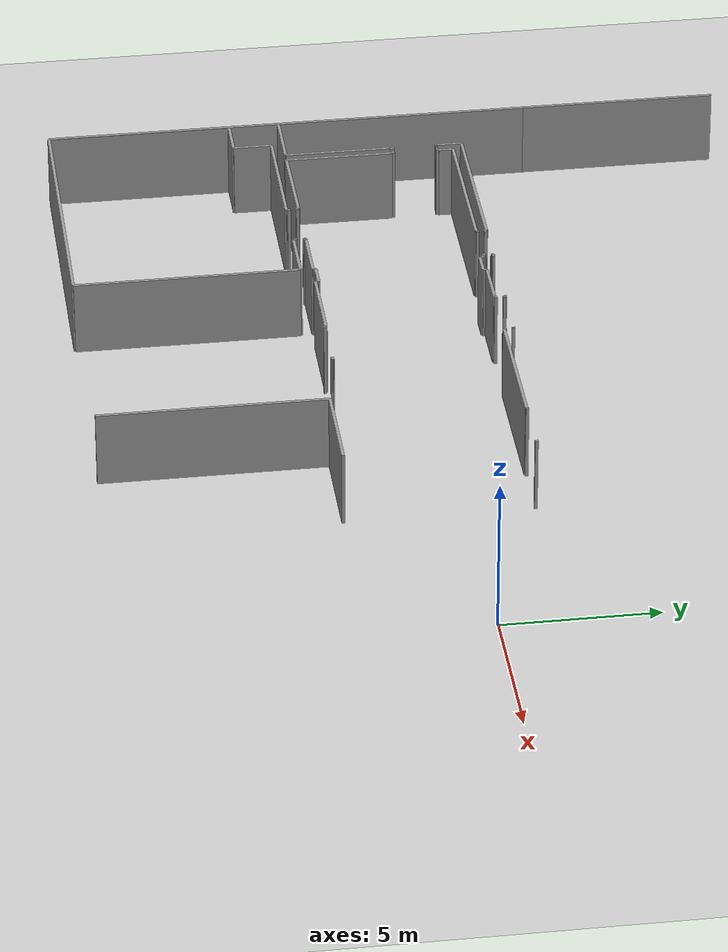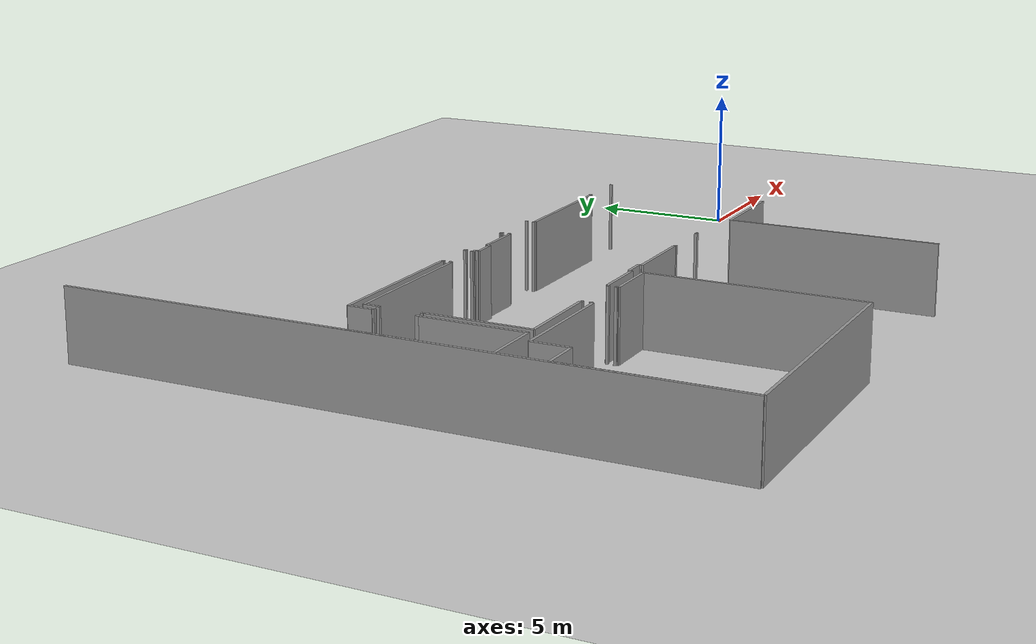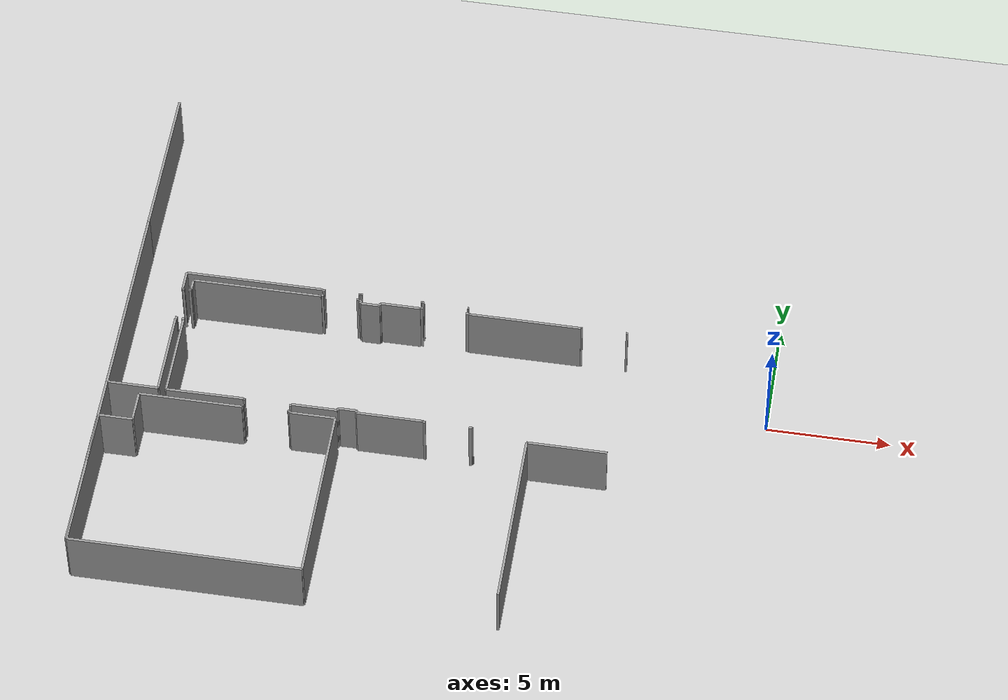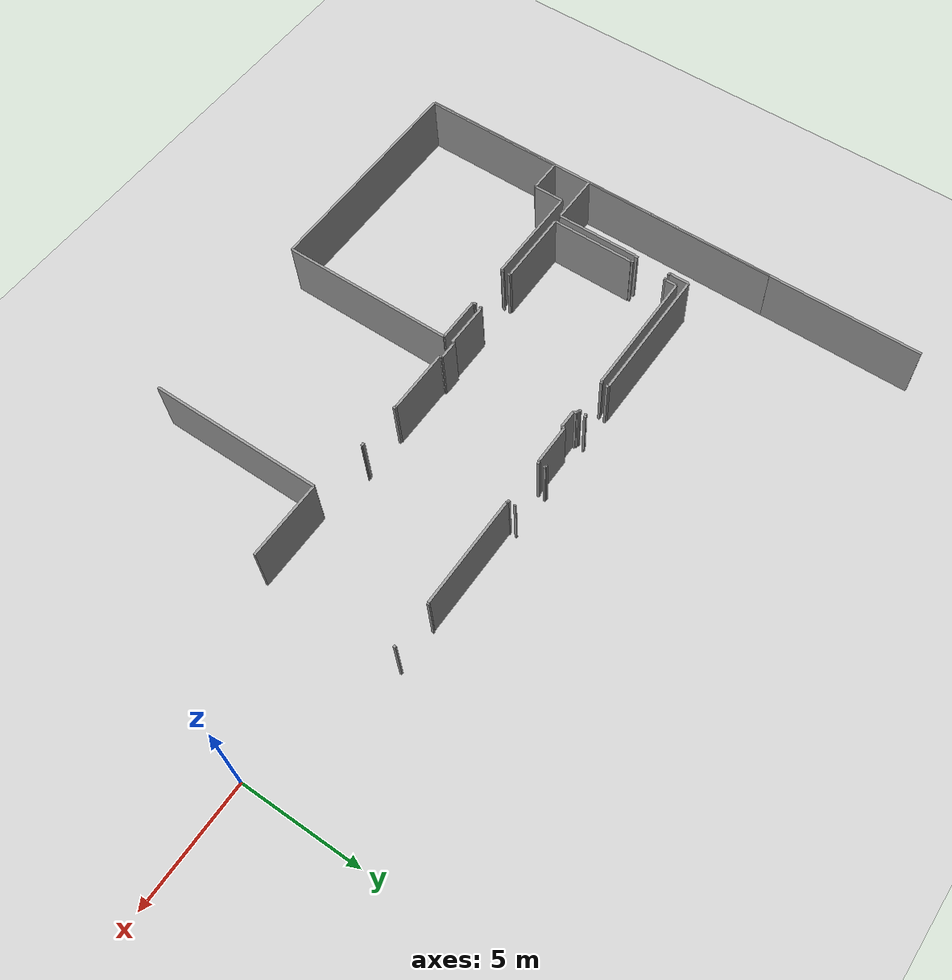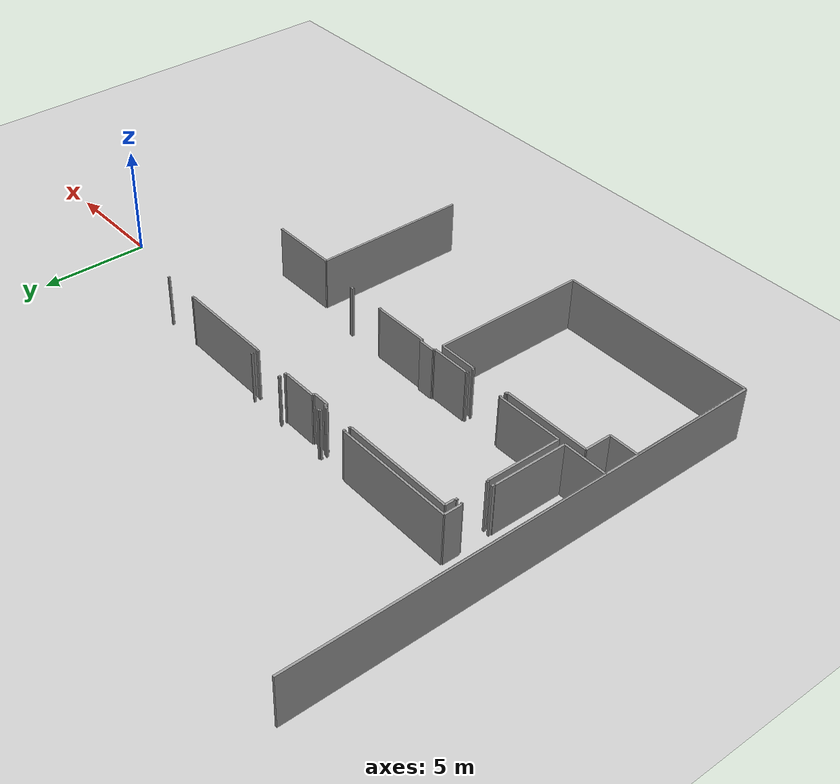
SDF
<sdf version="1.6">
 <world name="default">
  <model name="ground_plane">
   <static>1</static>
   <link name="link">
    <collision name="collision">
     <geometry><plane><normal>0 0 1</normal><size>100 100</size></plane></geometry>
     <surface><friction><ode><mu>100</mu><mu2>50</mu2></ode></friction></surface>
    </collision>
    <visual name="visual">
     <cast_shadows>0</cast_shadows>
     <geometry><plane><normal>0 0 1</normal><size>100 100</size></plane></geometry>
     <material>
      <script><uri>file://media/materials/scripts/gazebo.material</uri><name>Gazebo/Grey</name></script>
     </material>
    </visual>
   </link>
  </model>
  <model name="0510030938_A_40_1_102">
   <static>1</static>
   <link name="Wall_0">
    <collision name="Wall_0_Collision">
     <geometry><box><size>8.27512581973 0.1 2.5</size></box></geometry>
     <pose>4.13756290987 0 1.25 0 0 0</pose>
    </collision>
    <visual name="Wall_0_Visual">
     <pose>4.13756290987 0 1.25 0 0 0</pose>
     <geometry><box><size>8.27512581973 0.1 2.5</size></box></geometry>
     <material>
      <script><uri>file://media/materials/scripts/gazebo.material</uri><name>Gazebo/Grey</name></script>
      <ambient>1 1 1 1</ambient>
     </material>
    </visual>
    <pose>0.00724416653958 -14.7061664379 0 0 0 1.57079632679</pose>
   </link>
   <link name="Wall_6">
    <collision name="Wall_6_Collision">
     <geometry><box><size>0.0915052615525 0.1 2.5</size></box></geometry>
     <pose>0.0457526307763 0 1.25 0 0 0</pose>
    </collision>
    <visual name="Wall_6_Visual">
     <pose>0.0457526307763 0 1.25 0 0 0</pose>
     <geometry><box><size>0.0915052615525 0.1 2.5</size></box></geometry>
     <material>
      <script><uri>file://media/materials/scripts/gazebo.material</uri><name>Gazebo/Grey</name></script>
      <ambient>1 1 1 1</ambient>
     </material>
    </visual>
    <pose>9.31243963195 -8.81615067866 0 0 0 3.14159265359</pose>
   </link>
   <link name="Wall_7">
    <collision name="Wall_7_Collision">
     <geometry><box><size>0.031010116415 0.1 2.5</size></box></geometry>
     <pose>0.0155050582075 0 1.25 0 0 0</pose>
    </collision>
    <visual name="Wall_7_Visual">
     <pose>0.0155050582075 0 1.25 0 0 0</pose>
     <geometry><box><size>0.031010116415 0.1 2.5</size></box></geometry>
     <material>
      <script><uri>file://media/materials/scripts/gazebo.material</uri><name>Gazebo/Grey</name></script>
      <ambient>1 1 1 1</ambient>
     </material>
    </visual>
    <pose>9.22093437039 -8.81615067866 0 0 0 -1.57079632679</pose>
   </link>
   <link name="Wall_8">
    <collision name="Wall_8_Collision">
     <geometry><box><size>0.070281124498 0.1 2.5</size></box></geometry>
     <pose>0.035140562249 0 1.25 0 0 0</pose>
    </collision>
    <visual name="Wall_8_Visual">
     <pose>0.035140562249 0 1.25 0 0 0</pose>
     <geometry><box><size>0.070281124498 0.1 2.5</size></box></geometry>
     <material>
      <script><uri>file://media/materials/scripts/gazebo.material</uri><name>Gazebo/Grey</name></script>
      <ambient>1 1 1 1</ambient>
     </material>
    </visual>
    <pose>9.22093437039 -8.84716079508 0 0 0 3.14159265359</pose>
   </link>
   <link name="Wall_9">
    <collision name="Wall_9_Collision">
     <geometry><box><size>0.108408316812 0.1 2.5</size></box></geometry>
     <pose>0.0542041584058 0 1.25 0 0 0</pose>
    </collision>
    <visual name="Wall_9_Visual">
     <pose>0.0542041584058 0 1.25 0 0 0</pose>
     <geometry><box><size>0.108408316812 0.1 2.5</size></box></geometry>
     <material>
      <script><uri>file://media/materials/scripts/gazebo.material</uri><name>Gazebo/Grey</name></script>
      <ambient>1 1 1 1</ambient>
     </material>
    </visual>
    <pose>7.79027502415 -8.84716079508 0 0 0 3.14159265359</pose>
   </link>
   <link name="Wall_10">
    <collision name="Wall_10_Collision">
     <geometry><box><size>0.0318997509023 0.1 2.5</size></box></geometry>
     <pose>0.0159498754512 0 1.25 0 0 0</pose>
    </collision>
    <visual name="Wall_10_Visual">
     <pose>0.0159498754512 0 1.25 0 0 0</pose>
     <geometry><box><size>0.0318997509023 0.1 2.5</size></box></geometry>
     <material>
      <script><uri>file://media/materials/scripts/gazebo.material</uri><name>Gazebo/Grey</name></script>
      <ambient>1 1 1 1</ambient>
     </material>
    </visual>
    <pose>7.68186670734 -8.84716079508 0 0 0 1.57079632679</pose>
   </link>
   <link name="Wall_11">
    <collision name="Wall_11_Collision">
     <geometry><box><size>5.61016216766 0.1 2.5</size></box></geometry>
     <pose>2.80508108383 0 1.25 0 0 0</pose>
    </collision>
    <visual name="Wall_11_Visual">
     <pose>2.80508108383 0 1.25 0 0 0</pose>
     <geometry><box><size>5.61016216766 0.1 2.5</size></box></geometry>
     <material>
      <script><uri>file://media/materials/scripts/gazebo.material</uri><name>Gazebo/Grey</name></script>
      <ambient>1 1 1 1</ambient>
     </material>
    </visual>
    <pose>7.68186670734 -8.81526104418 0 0 0 3.14159265359</pose>
   </link>
   <link name="Wall_12">
    <collision name="Wall_12_Collision">
     <geometry><box><size>0.824691169742 0.1 2.5</size></box></geometry>
     <pose>0.412345584871 0 1.25 0 0 0</pose>
    </collision>
    <visual name="Wall_12_Visual">
     <pose>0.412345584871 0 1.25 0 0 0</pose>
     <geometry><box><size>0.824691169742 0.1 2.5</size></box></geometry>
     <material>
      <script><uri>file://media/materials/scripts/gazebo.material</uri><name>Gazebo/Grey</name></script>
      <ambient>1 1 1 1</ambient>
     </material>
    </visual>
    <pose>2.07170453968 -8.81526104418 0 0 0 -1.57079632679</pose>
   </link>
   <link name="Wall_13">
    <collision name="Wall_13_Collision">
     <geometry><box><size>0.0330435666718 0.1 2.5</size></box></geometry>
     <pose>0.0165217833359 0 1.25 0 0 0</pose>
    </collision>
    <visual name="Wall_13_Visual">
     <pose>0.0165217833359 0 1.25 0 0 0</pose>
     <geometry><box><size>0.0330435666718 0.1 2.5</size></box></geometry>
     <material>
      <script><uri>file://media/materials/scripts/gazebo.material</uri><name>Gazebo/Grey</name></script>
      <ambient>1 1 1 1</ambient>
     </material>
    </visual>
    <pose>2.07170453968 -9.63995221392 0 0 0 0.0</pose>
   </link>
   <link name="Wall_14">
    <collision name="Wall_14_Collision">
     <geometry><box><size>0.0660871333435 0.1 2.5</size></box></geometry>
     <pose>0.0330435666718 0 1.25 0 0 0</pose>
    </collision>
    <visual name="Wall_14_Visual">
     <pose>0.0330435666718 0 1.25 0 0 0</pose>
     <geometry><box><size>0.0660871333435 0.1 2.5</size></box></geometry>
     <material>
      <script><uri>file://media/materials/scripts/gazebo.material</uri><name>Gazebo/Grey</name></script>
      <ambient>1 1 1 1</ambient>
     </material>
    </visual>
    <pose>2.10474810635 -9.63995221392 0 0 0 -1.57079632679</pose>
   </link>
   <link name="Wall_15">
    <collision name="Wall_15_Collision">
     <geometry><box><size>0.133953535662 0.1 2.5</size></box></geometry>
     <pose>0.0669767678308 0 1.25 0 0 0</pose>
    </collision>
    <visual name="Wall_15_Visual">
     <pose>0.0669767678308 0 1.25 0 0 0</pose>
     <geometry><box><size>0.133953535662 0.1 2.5</size></box></geometry>
     <material>
      <script><uri>file://media/materials/scripts/gazebo.material</uri><name>Gazebo/Grey</name></script>
      <ambient>1 1 1 1</ambient>
     </material>
    </visual>
    <pose>2.10474810635 -11.0726450104 0 0 0 -1.57079632679</pose>
   </link>
   <link name="Wall_16">
    <collision name="Wall_16_Collision">
     <geometry><box><size>0.025418128209 0.1 2.5</size></box></geometry>
     <pose>0.0127090641045 0 1.25 0 0 0</pose>
    </collision>
    <visual name="Wall_16_Visual">
     <pose>0.0127090641045 0 1.25 0 0 0</pose>
     <geometry><box><size>0.025418128209 0.1 2.5</size></box></geometry>
     <material>
      <script><uri>file://media/materials/scripts/gazebo.material</uri><name>Gazebo/Grey</name></script>
      <ambient>1 1 1 1</ambient>
     </material>
    </visual>
    <pose>2.10474810635 -11.2065985461 0 0 0 3.14159265359</pose>
   </link>
   <link name="Wall_17">
    <collision name="Wall_17_Collision">
     <geometry><box><size>3.49651771644 0.1 2.5</size></box></geometry>
     <pose>1.74825885822 0 1.25 0 0 0</pose>
    </collision>
    <visual name="Wall_17_Visual">
     <pose>1.74825885822 0 1.25 0 0 0</pose>
     <geometry><box><size>3.49651771644 0.1 2.5</size></box></geometry>
     <material>
      <script><uri>file://media/materials/scripts/gazebo.material</uri><name>Gazebo/Grey</name></script>
      <ambient>1 1 1 1</ambient>
     </material>
    </visual>
    <pose>2.07932997814 -11.2065985461 0 0 0 -1.57079632679</pose>
   </link>
   <link name="Wall_18">
    <collision name="Wall_18_Collision">
     <geometry><box><size>2.07208805658 0.1 2.5</size></box></geometry>
     <pose>1.03604402829 0 1.25 0 0 0</pose>
    </collision>
    <visual name="Wall_18_Visual">
     <pose>1.03604402829 0 1.25 0 0 0</pose>
     <geometry><box><size>2.07208805658 0.1 2.5</size></box></geometry>
     <material>
      <script><uri>file://media/materials/scripts/gazebo.material</uri><name>Gazebo/Grey</name></script>
      <ambient>1 1 1 1</ambient>
     </material>
    </visual>
    <pose>2.07932997814 -14.7031162625 0 0 0 -3.14012062325</pose>
   </link>
   <link name="Wall_81">
    <collision name="Wall_81_Collision">
     <geometry><box><size>0.0573178791114 0.1 2.5</size></box></geometry>
     <pose>0.0286589395557 0 1.25 0 0 0</pose>
    </collision>
    <visual name="Wall_81_Visual">
     <pose>0.0286589395557 0 1.25 0 0 0</pose>
     <geometry><box><size>0.0573178791114 0.1 2.5</size></box></geometry>
     <material>
      <script><uri>file://media/materials/scripts/gazebo.material</uri><name>Gazebo/Grey</name></script>
      <ambient>1 1 1 1</ambient>
     </material>
    </visual>
    <pose>13.6766051548 -8.84372934777 0 0 0 3.14159265359</pose>
   </link>
   <link name="Wall_82">
    <collision name="Wall_82_Collision">
     <geometry><box><size>0.0997661532205 0.1 2.5</size></box></geometry>
     <pose>0.0498830766102 0 1.25 0 0 0</pose>
    </collision>
    <visual name="Wall_82_Visual">
     <pose>0.0498830766102 0 1.25 0 0 0</pose>
     <geometry><box><size>0.0997661532205 0.1 2.5</size></box></geometry>
     <material>
      <script><uri>file://media/materials/scripts/gazebo.material</uri><name>Gazebo/Grey</name></script>
      <ambient>1 1 1 1</ambient>
     </material>
    </visual>
    <pose>11.8573026282 -8.84372934777 0 0 0 3.14159265359</pose>
   </link>
   <link name="Wall_83">
    <collision name="Wall_83_Collision">
     <geometry><box><size>0.0697727619338 0.1 2.5</size></box></geometry>
     <pose>0.0348863809669 0 1.25 0 0 0</pose>
    </collision>
    <visual name="Wall_83_Visual">
     <pose>0.0348863809669 0 1.25 0 0 0</pose>
     <geometry><box><size>0.0697727619338 0.1 2.5</size></box></geometry>
     <material>
      <script><uri>file://media/materials/scripts/gazebo.material</uri><name>Gazebo/Grey</name></script>
      <ambient>1 1 1 1</ambient>
     </material>
    </visual>
    <pose>11.757536475 -8.84372934777 0 0 0 1.57079632679</pose>
   </link>
   <link name="Wall_125">
    <collision name="Wall_125_Collision">
     <geometry><box><size>6.02790910477 0.1 2.5</size></box></geometry>
     <pose>3.01395455239 0 1.25 0 0 0</pose>
    </collision>
    <visual name="Wall_125_Visual">
     <pose>3.01395455239 0 1.25 0 0 0</pose>
     <geometry><box><size>6.02790910477 0.1 2.5</size></box></geometry>
     <material>
      <script><uri>file://media/materials/scripts/gazebo.material</uri><name>Gazebo/Grey</name></script>
      <ambient>1 1 1 1</ambient>
     </material>
    </visual>
    <pose>0.0181739616695 -22.3940064054 0 0 0 1.57079632679</pose>
   </link>
   <link name="Wall_126">
    <collision name="Wall_126_Collision">
     <geometry><box><size>1.36482639418 0.1 2.5</size></box></geometry>
     <pose>0.682413197092 0 1.25 0 0 0</pose>
    </collision>
    <visual name="Wall_126_Visual">
     <pose>0.682413197092 0 1.25 0 0 0</pose>
     <geometry><box><size>1.36482639418 0.1 2.5</size></box></geometry>
     <material>
      <script><uri>file://media/materials/scripts/gazebo.material</uri><name>Gazebo/Grey</name></script>
      <ambient>1 1 1 1</ambient>
     </material>
    </visual>
    <pose>0.0181739616695 -16.3660973006 0 0 0 0.0</pose>
   </link>
   <link name="Wall_127">
    <collision name="Wall_127_Collision">
     <geometry><box><size>1.27014386661 0.1 2.5</size></box></geometry>
     <pose>0.635071933303 0 1.25 0 0 0</pose>
    </collision>
    <visual name="Wall_127_Visual">
     <pose>0.635071933303 0 1.25 0 0 0</pose>
     <geometry><box><size>1.27014386661 0.1 2.5</size></box></geometry>
     <material>
      <script><uri>file://media/materials/scripts/gazebo.material</uri><name>Gazebo/Grey</name></script>
      <ambient>1 1 1 1</ambient>
     </material>
    </visual>
    <pose>1.38300035585 -16.3660973006 0 0 0 1.57079632679</pose>
   </link>
   <link name="Wall_128">
    <collision name="Wall_128_Collision">
     <geometry><box><size>4.16844593564 0.1 2.5</size></box></geometry>
     <pose>2.08422296782 0 1.25 0 0 0</pose>
    </collision>
    <visual name="Wall_128_Visual">
     <pose>2.08422296782 0 1.25 0 0 0</pose>
     <geometry><box><size>4.16844593564 0.1 2.5</size></box></geometry>
     <material>
      <script><uri>file://media/materials/scripts/gazebo.material</uri><name>Gazebo/Grey</name></script>
      <ambient>1 1 1 1</ambient>
     </material>
    </visual>
    <pose>1.38300035585 -15.095953434 0 0 0 0.0</pose>
   </link>
   <link name="Wall_129">
    <collision name="Wall_129_Collision">
     <geometry><box><size>0.0868029078339 0.1 2.5</size></box></geometry>
     <pose>0.0434014539169 0 1.25 0 0 0</pose>
    </collision>
    <visual name="Wall_129_Visual">
     <pose>0.0434014539169 0 1.25 0 0 0</pose>
     <geometry><box><size>0.0868029078339 0.1 2.5</size></box></geometry>
     <material>
      <script><uri>file://media/materials/scripts/gazebo.material</uri><name>Gazebo/Grey</name></script>
      <ambient>1 1 1 1</ambient>
     </material>
    </visual>
    <pose>5.5514462915 -15.095953434 0 0 0 1.57079632679</pose>
   </link>
   <link name="Wall_130">
    <collision name="Wall_130_Collision">
     <geometry><box><size>0.0710436683443 0.1 2.5</size></box></geometry>
     <pose>0.0355218341721 0 1.25 0 0 0</pose>
    </collision>
    <visual name="Wall_130_Visual">
     <pose>0.0355218341721 0 1.25 0 0 0</pose>
     <geometry><box><size>0.0710436683443 0.1 2.5</size></box></geometry>
     <material>
      <script><uri>file://media/materials/scripts/gazebo.material</uri><name>Gazebo/Grey</name></script>
      <ambient>1 1 1 1</ambient>
     </material>
    </visual>
    <pose>5.5514462915 -15.0091505262 0 0 0 0.0</pose>
   </link>
   <link name="Wall_131">
    <collision name="Wall_131_Collision">
     <geometry><box><size>0.0789232880891 0.1 2.5</size></box></geometry>
     <pose>0.0394616440445 0 1.25 0 0 0</pose>
    </collision>
    <visual name="Wall_131_Visual">
     <pose>0.0394616440445 0 1.25 0 0 0</pose>
     <geometry><box><size>0.0789232880891 0.1 2.5</size></box></geometry>
     <material>
      <script><uri>file://media/materials/scripts/gazebo.material</uri><name>Gazebo/Grey</name></script>
      <ambient>1 1 1 1</ambient>
     </material>
    </visual>
    <pose>7.38269533832 -15.0091505262 0 0 0 0.0</pose>
   </link>
   <link name="Wall_132">
    <collision name="Wall_132_Collision">
     <geometry><box><size>0.0756189314219 0.1 2.5</size></box></geometry>
     <pose>0.0378094657109 0 1.25 0 0 0</pose>
    </collision>
    <visual name="Wall_132_Visual">
     <pose>0.0378094657109 0 1.25 0 0 0</pose>
     <geometry><box><size>0.0756189314219 0.1 2.5</size></box></geometry>
     <material>
      <script><uri>file://media/materials/scripts/gazebo.material</uri><name>Gazebo/Grey</name></script>
      <ambient>1 1 1 1</ambient>
     </material>
    </visual>
    <pose>7.4616186264 -15.0091505262 0 0 0 -1.57079632679</pose>
   </link>
   <link name="Wall_133">
    <collision name="Wall_133_Collision">
     <geometry><box><size>1.84891464593 0.1 2.5</size></box></geometry>
     <pose>0.924457322963 0 1.25 0 0 0</pose>
    </collision>
    <visual name="Wall_133_Visual">
     <pose>0.924457322963 0 1.25 0 0 0</pose>
     <geometry><box><size>1.84891464593 0.1 2.5</size></box></geometry>
     <material>
      <script><uri>file://media/materials/scripts/gazebo.material</uri><name>Gazebo/Grey</name></script>
      <ambient>1 1 1 1</ambient>
     </material>
    </visual>
    <pose>7.4616186264 -15.0847694576 0 0 0 0.0</pose>
   </link>
   <link name="Wall_134">
    <collision name="Wall_134_Collision">
     <geometry><box><size>7.30783895074 0.1 2.5</size></box></geometry>
     <pose>3.65391947537 0 1.25 0 0 0</pose>
    </collision>
    <visual name="Wall_134_Visual">
     <pose>3.65391947537 0 1.25 0 0 0</pose>
     <geometry><box><size>7.30783895074 0.1 2.5</size></box></geometry>
     <material>
      <script><uri>file://media/materials/scripts/gazebo.material</uri><name>Gazebo/Grey</name></script>
      <ambient>1 1 1 1</ambient>
     </material>
    </visual>
    <pose>9.31053327233 -15.0847694576 0 0 0 -1.57079632679</pose>
   </link>
   <link name="Wall_135">
    <collision name="Wall_135_Collision">
     <geometry><box><size>9.29235941582 0.1 2.5</size></box></geometry>
     <pose>4.64617970791 0 1.25 0 0 0</pose>
    </collision>
    <visual name="Wall_135_Visual">
     <pose>4.64617970791 0 1.25 0 0 0</pose>
     <geometry><box><size>9.29235941582 0.1 2.5</size></box></geometry>
     <material>
      <script><uri>file://media/materials/scripts/gazebo.material</uri><name>Gazebo/Grey</name></script>
      <ambient>1 1 1 1</ambient>
     </material>
    </visual>
    <pose>9.31053327233 -22.3926084083 0 0 0 -3.14144220772</pose>
   </link>
   <link name="Wall_136">
    <collision name="Wall_136_Collision">
     <geometry><box><size>7.2913171674 0.1 2.5</size></box></geometry>
     <pose>3.6456585837 0 1.25 0 0 0</pose>
    </collision>
    <visual name="Wall_136_Visual">
     <pose>3.6456585837 0 1.25 0 0 0</pose>
     <geometry><box><size>7.2913171674 0.1 2.5</size></box></geometry>
     <material>
      <script><uri>file://media/materials/scripts/gazebo.material</uri><name>Gazebo/Grey</name></script>
      <ambient>1 1 1 1</ambient>
     </material>
    </visual>
    <pose>16.9799450968 -22.3844746073 0 0 0 1.57079632679</pose>
   </link>
   <link name="Wall_137">
    <collision name="Wall_137_Collision">
     <geometry><box><size>3.21564739973 0.1 2.5</size></box></geometry>
     <pose>1.60782369986 0 1.25 0 0 0</pose>
    </collision>
    <visual name="Wall_137_Visual">
     <pose>1.60782369986 0 1.25 0 0 0</pose>
     <geometry><box><size>3.21564739973 0.1 2.5</size></box></geometry>
     <material>
      <script><uri>file://media/materials/scripts/gazebo.material</uri><name>Gazebo/Grey</name></script>
      <ambient>1 1 1 1</ambient>
     </material>
    </visual>
    <pose>16.9799450968 -15.0931574399 0 0 0 0.0</pose>
   </link>
   <link name="Wall_156">
    <collision name="Wall_156_Collision">
     <geometry><box><size>3.52854455798 0.1 2.5</size></box></geometry>
     <pose>1.76427227899 0 1.25 0 0 0</pose>
    </collision>
    <visual name="Wall_156_Visual">
     <pose>1.76427227899 0 1.25 0 0 0</pose>
     <geometry><box><size>3.52854455798 0.1 2.5</size></box></geometry>
     <material>
      <script><uri>file://media/materials/scripts/gazebo.material</uri><name>Gazebo/Grey</name></script>
      <ambient>1 1 1 1</ambient>
     </material>
    </visual>
    <pose>2.40913019165 -14.7179858675 0 0 0 1.57079632679</pose>
   </link>
   <link name="Wall_157">
    <collision name="Wall_157_Collision">
     <geometry><box><size>0.0294850287225 0.1 2.5</size></box></geometry>
     <pose>0.0147425143612 0 1.25 0 0 0</pose>
    </collision>
    <visual name="Wall_157_Visual">
     <pose>0.0147425143612 0 1.25 0 0 0</pose>
     <geometry><box><size>0.0294850287225 0.1 2.5</size></box></geometry>
     <material>
      <script><uri>file://media/materials/scripts/gazebo.material</uri><name>Gazebo/Grey</name></script>
      <ambient>1 1 1 1</ambient>
     </material>
    </visual>
    <pose>2.40913019165 -11.1894413095 0 0 0 3.14159265359</pose>
   </link>
   <link name="Wall_158">
    <collision name="Wall_158_Collision">
     <geometry><box><size>0.0969701591175 0.1 2.5</size></box></geometry>
     <pose>0.0484850795587 0 1.25 0 0 0</pose>
    </collision>
    <visual name="Wall_158_Visual">
     <pose>0.0484850795587 0 1.25 0 0 0</pose>
     <geometry><box><size>0.0969701591175 0.1 2.5</size></box></geometry>
     <material>
      <script><uri>file://media/materials/scripts/gazebo.material</uri><name>Gazebo/Grey</name></script>
      <ambient>1 1 1 1</ambient>
     </material>
    </visual>
    <pose>2.37964516293 -11.1894413095 0 0 0 1.57079632679</pose>
   </link>
   <link name="Wall_159">
    <collision name="Wall_159_Collision">
     <geometry><box><size>0.095572162066 0.1 2.5</size></box></geometry>
     <pose>0.047786081033 0 1.25 0 0 0</pose>
    </collision>
    <visual name="Wall_159_Visual">
     <pose>0.047786081033 0 1.25 0 0 0</pose>
     <geometry><box><size>0.095572162066 0.1 2.5</size></box></geometry>
     <material>
      <script><uri>file://media/materials/scripts/gazebo.material</uri><name>Gazebo/Grey</name></script>
      <ambient>1 1 1 1</ambient>
     </material>
    </visual>
    <pose>2.37964516293 -9.71226678867 0 0 0 1.57079632679</pose>
   </link>
   <link name="Wall_160">
    <collision name="Wall_160_Collision">
     <geometry><box><size>0.0330435666718 0.1 2.5</size></box></geometry>
     <pose>0.0165217833359 0 1.25 0 0 0</pose>
    </collision>
    <visual name="Wall_160_Visual">
     <pose>0.0165217833359 0 1.25 0 0 0</pose>
     <geometry><box><size>0.0330435666718 0.1 2.5</size></box></geometry>
     <material>
      <script><uri>file://media/materials/scripts/gazebo.material</uri><name>Gazebo/Grey</name></script>
      <ambient>1 1 1 1</ambient>
     </material>
    </visual>
    <pose>2.37964516293 -9.61669462661 0 0 0 0.0</pose>
   </link>
   <link name="Wall_161">
    <collision name="Wall_161_Collision">
     <geometry><box><size>0.467185196482 0.1 2.5</size></box></geometry>
     <pose>0.233592598241 0 1.25 0 0 0</pose>
    </collision>
    <visual name="Wall_161_Visual">
     <pose>0.233592598241 0 1.25 0 0 0</pose>
     <geometry><box><size>0.467185196482 0.1 2.5</size></box></geometry>
     <material>
      <script><uri>file://media/materials/scripts/gazebo.material</uri><name>Gazebo/Grey</name></script>
      <ambient>1 1 1 1</ambient>
     </material>
    </visual>
    <pose>2.4126887296 -9.61669462661 0 0 0 1.57079632679</pose>
   </link>
   <link name="Wall_162">
    <collision name="Wall_162_Collision">
     <geometry><box><size>5.26498398658 0.1 2.5</size></box></geometry>
     <pose>2.63249199329 0 1.25 0 0 0</pose>
    </collision>
    <visual name="Wall_162_Visual">
     <pose>2.63249199329 0 1.25 0 0 0</pose>
     <geometry><box><size>5.26498398658 0.1 2.5</size></box></geometry>
     <material>
      <script><uri>file://media/materials/scripts/gazebo.material</uri><name>Gazebo/Grey</name></script>
      <ambient>1 1 1 1</ambient>
     </material>
    </visual>
    <pose>2.4126887296 -9.14950943013 0 0 0 0.0</pose>
   </link>
   <link name="Wall_163">
    <collision name="Wall_163_Collision">
     <geometry><box><size>0.0390168268009 0.1 2.5</size></box></geometry>
     <pose>0.0195084134004 0 1.25 0 0 0</pose>
    </collision>
    <visual name="Wall_163_Visual">
     <pose>0.0195084134004 0 1.25 0 0 0</pose>
     <geometry><box><size>0.0390168268009 0.1 2.5</size></box></geometry>
     <material>
      <script><uri>file://media/materials/scripts/gazebo.material</uri><name>Gazebo/Grey</name></script>
      <ambient>1 1 1 1</ambient>
     </material>
    </visual>
    <pose>7.67767271618 -9.14950943013 0 0 0 1.57079632679</pose>
   </link>
   <link name="Wall_164">
    <collision name="Wall_164_Collision">
     <geometry><box><size>0.0915052615525 0.1 2.5</size></box></geometry>
     <pose>0.0457526307763 0 1.25 0 0 0</pose>
    </collision>
    <visual name="Wall_164_Visual">
     <pose>0.0457526307763 0 1.25 0 0 0</pose>
     <geometry><box><size>0.0915052615525 0.1 2.5</size></box></geometry>
     <material>
      <script><uri>file://media/materials/scripts/gazebo.material</uri><name>Gazebo/Grey</name></script>
      <ambient>1 1 1 1</ambient>
     </material>
    </visual>
    <pose>7.67767271618 -9.11049260332 0 0 0 0.0</pose>
   </link>
   <link name="Wall_165">
    <collision name="Wall_165_Collision">
     <geometry><box><size>0.0866758171928 0.1 2.5</size></box></geometry>
     <pose>0.0433379085964 0 1.25 0 0 0</pose>
    </collision>
    <visual name="Wall_165_Visual">
     <pose>0.0433379085964 0 1.25 0 0 0</pose>
     <geometry><box><size>0.0866758171928 0.1 2.5</size></box></geometry>
     <material>
      <script><uri>file://media/materials/scripts/gazebo.material</uri><name>Gazebo/Grey</name></script>
      <ambient>1 1 1 1</ambient>
     </material>
    </visual>
    <pose>9.12180367038 -9.11049260332 0 0 0 0.0</pose>
   </link>
   <link name="Wall_166">
    <collision name="Wall_166_Collision">
     <geometry><box><size>0.0278328503889 0.1 2.5</size></box></geometry>
     <pose>0.0139164251944 0 1.25 0 0 0</pose>
    </collision>
    <visual name="Wall_166_Visual">
     <pose>0.0139164251944 0 1.25 0 0 0</pose>
     <geometry><box><size>0.0278328503889 0.1 2.5</size></box></geometry>
     <material>
      <script><uri>file://media/materials/scripts/gazebo.material</uri><name>Gazebo/Grey</name></script>
      <ambient>1 1 1 1</ambient>
     </material>
    </visual>
    <pose>9.20847948757 -9.11049260332 0 0 0 -1.57079632679</pose>
   </link>
   <link name="Wall_167">
    <collision name="Wall_167_Collision">
     <geometry><box><size>0.107391591683 0.1 2.5</size></box></geometry>
     <pose>0.0536957958416 0 1.25 0 0 0</pose>
    </collision>
    <visual name="Wall_167_Visual">
     <pose>0.0536957958416 0 1.25 0 0 0</pose>
     <geometry><box><size>0.107391591683 0.1 2.5</size></box></geometry>
     <material>
      <script><uri>file://media/materials/scripts/gazebo.material</uri><name>Gazebo/Grey</name></script>
      <ambient>1 1 1 1</ambient>
     </material>
    </visual>
    <pose>9.20847948757 -9.13832545371 0 0 0 0.0</pose>
   </link>
   <link name="Wall_168">
    <collision name="Wall_168_Collision">
     <geometry><box><size>0.134334807585 0.1 2.5</size></box></geometry>
     <pose>0.0671674037924 0 1.25 0 0 0</pose>
    </collision>
    <visual name="Wall_168_Visual">
     <pose>0.0671674037924 0 1.25 0 0 0</pose>
     <geometry><box><size>0.134334807585 0.1 2.5</size></box></geometry>
     <material>
      <script><uri>file://media/materials/scripts/gazebo.material</uri><name>Gazebo/Grey</name></script>
      <ambient>1 1 1 1</ambient>
     </material>
    </visual>
    <pose>9.31587107925 -9.13832545371 0 0 0 -1.57079632679</pose>
   </link>
   <link name="Wall_169">
    <collision name="Wall_169_Collision">
     <geometry><box><size>0.775634182299 0.1 2.5</size></box></geometry>
     <pose>0.387817091149 0 1.25 0 0 0</pose>
    </collision>
    <visual name="Wall_169_Visual">
     <pose>0.387817091149 0 1.25 0 0 0</pose>
     <geometry><box><size>0.775634182299 0.1 2.5</size></box></geometry>
     <material>
      <script><uri>file://media/materials/scripts/gazebo.material</uri><name>Gazebo/Grey</name></script>
      <ambient>1 1 1 1</ambient>
     </material>
    </visual>
    <pose>9.31587107925 -9.2726602613 0 0 0 0.0</pose>
   </link>
   <link name="Wall_170">
    <collision name="Wall_170_Collision">
     <geometry><box><size>0.117685933608 0.1 2.5</size></box></geometry>
     <pose>0.0588429668039 0 1.25 0 0 0</pose>
    </collision>
    <visual name="Wall_170_Visual">
     <pose>0.0588429668039 0 1.25 0 0 0</pose>
     <geometry><box><size>0.117685933608 0.1 2.5</size></box></geometry>
     <material>
      <script><uri>file://media/materials/scripts/gazebo.material</uri><name>Gazebo/Grey</name></script>
      <ambient>1 1 1 1</ambient>
     </material>
    </visual>
    <pose>10.0915052616 -9.2726602613 0 0 0 1.57079632679</pose>
   </link>
   <link name="Wall_171">
    <collision name="Wall_171_Collision">
     <geometry><box><size>1.64938233948 0.1 2.5</size></box></geometry>
     <pose>0.824691169742 0 1.25 0 0 0</pose>
    </collision>
    <visual name="Wall_171_Visual">
     <pose>0.824691169742 0 1.25 0 0 0</pose>
     <geometry><box><size>1.64938233948 0.1 2.5</size></box></geometry>
     <material>
      <script><uri>file://media/materials/scripts/gazebo.material</uri><name>Gazebo/Grey</name></script>
      <ambient>1 1 1 1</ambient>
     </material>
    </visual>
    <pose>10.0915052616 -9.15497432769 0 0 0 0.0</pose>
   </link>
   <link name="Wall_172">
    <collision name="Wall_172_Collision">
     <geometry><box><size>0.0331706573128 0.1 2.5</size></box></geometry>
     <pose>0.0165853286564 0 1.25 0 0 0</pose>
    </collision>
    <visual name="Wall_172_Visual">
     <pose>0.0165853286564 0 1.25 0 0 0</pose>
     <geometry><box><size>0.0331706573128 0.1 2.5</size></box></geometry>
     <material>
      <script><uri>file://media/materials/scripts/gazebo.material</uri><name>Gazebo/Grey</name></script>
      <ambient>1 1 1 1</ambient>
     </material>
    </visual>
    <pose>11.740887601 -9.15497432769 0 0 0 1.57079632679</pose>
   </link>
   <link name="Wall_173">
    <collision name="Wall_173_Collision">
     <geometry><box><size>0.0991307000153 0.1 2.5</size></box></geometry>
     <pose>0.0495653500076 0 1.25 0 0 0</pose>
    </collision>
    <visual name="Wall_173_Visual">
     <pose>0.0495653500076 0 1.25 0 0 0</pose>
     <geometry><box><size>0.0991307000153 0.1 2.5</size></box></geometry>
     <material>
      <script><uri>file://media/materials/scripts/gazebo.material</uri><name>Gazebo/Grey</name></script>
      <ambient>1 1 1 1</ambient>
     </material>
    </visual>
    <pose>11.740887601 -9.12180367038 0 0 0 0.0</pose>
   </link>
   <link name="Wall_174">
    <collision name="Wall_174_Collision">
     <geometry><box><size>0.111966854761 0.1 2.5</size></box></geometry>
     <pose>0.0559834273804 0 1.25 0 0 0</pose>
    </collision>
    <visual name="Wall_174_Visual">
     <pose>0.0559834273804 0 1.25 0 0 0</pose>
     <geometry><box><size>0.111966854761 0.1 2.5</size></box></geometry>
     <material>
      <script><uri>file://media/materials/scripts/gazebo.material</uri><name>Gazebo/Grey</name></script>
      <ambient>1 1 1 1</ambient>
     </material>
    </visual>
    <pose>13.5936149662 -9.12180367038 0 0 0 0.0</pose>
   </link>
   <link name="Wall_175">
    <collision name="Wall_175_Collision">
     <geometry><box><size>0.014107061156 0.1 2.5</size></box></geometry>
     <pose>0.00705353057801 0 1.25 0 0 0</pose>
    </collision>
    <visual name="Wall_175_Visual">
     <pose>0.00705353057801 0 1.25 0 0 0</pose>
     <geometry><box><size>0.014107061156 0.1 2.5</size></box></geometry>
     <material>
      <script><uri>file://media/materials/scripts/gazebo.material</uri><name>Gazebo/Grey</name></script>
      <ambient>1 1 1 1</ambient>
     </material>
    </visual>
    <pose>13.705581821 -9.12180367038 0 0 0 -1.57079632679</pose>
   </link>
   <link name="Wall_176">
    <collision name="Wall_176_Collision">
     <geometry><box><size>0.0109297951299 0.1 2.5</size></box></geometry>
     <pose>0.00546489756494 0 1.25 0 0 0</pose>
    </collision>
    <visual name="Wall_176_Visual">
     <pose>0.00546489756494 0 1.25 0 0 0</pose>
     <geometry><box><size>0.0109297951299 0.1 2.5</size></box></geometry>
     <material>
      <script><uri>file://media/materials/scripts/gazebo.material</uri><name>Gazebo/Grey</name></script>
      <ambient>1 1 1 1</ambient>
     </material>
    </visual>
    <pose>13.705581821 -9.13591073153 0 0 0 -1.57079632679</pose>
   </link>
   <link name="Wall_177">
    <collision name="Wall_177_Collision">
     <geometry><box><size>4.57322962737 0.1 2.5</size></box></geometry>
     <pose>2.28661481369 0 1.25 0 0 0</pose>
    </collision>
    <visual name="Wall_177_Visual">
     <pose>2.28661481369 0 1.25 0 0 0</pose>
     <geometry><box><size>4.57322962737 0.1 2.5</size></box></geometry>
     <material>
      <script><uri>file://media/materials/scripts/gazebo.material</uri><name>Gazebo/Grey</name></script>
      <ambient>1 1 1 1</ambient>
     </material>
    </visual>
    <pose>13.705581821 -9.14684052666 0 0 0 0.0</pose>
   </link>
   <link name="Wall_178">
    <collision name="Wall_178_Collision">
     <geometry><box><size>0.0231304966702 0.1 2.5</size></box></geometry>
     <pose>0.0115652483351 0 1.25 0 0 0</pose>
    </collision>
    <visual name="Wall_178_Visual">
     <pose>0.0115652483351 0 1.25 0 0 0</pose>
     <geometry><box><size>0.0231304966702 0.1 2.5</size></box></geometry>
     <material>
      <script><uri>file://media/materials/scripts/gazebo.material</uri><name>Gazebo/Grey</name></script>
      <ambient>1 1 1 1</ambient>
     </material>
    </visual>
    <pose>18.2788114483 -9.14684052666 0 0 0 1.57079632679</pose>
   </link>
   <link name="Wall_179">
    <collision name="Wall_179_Collision">
     <geometry><box><size>0.0718062121905 0.1 2.5</size></box></geometry>
     <pose>0.0359031060953 0 1.25 0 0 0</pose>
    </collision>
    <visual name="Wall_179_Visual">
     <pose>0.0359031060953 0 1.25 0 0 0</pose>
     <geometry><box><size>0.0718062121905 0.1 2.5</size></box></geometry>
     <material>
      <script><uri>file://media/materials/scripts/gazebo.material</uri><name>Gazebo/Grey</name></script>
      <ambient>1 1 1 1</ambient>
     </material>
    </visual>
    <pose>18.2788114483 -9.12371002999 0 0 0 0.0</pose>
   </link>
   <link name="Wall_180">
    <collision name="Wall_180_Collision">
     <geometry><box><size>0.084388185654 0.1 2.5</size></box></geometry>
     <pose>0.042194092827 0 1.25 0 0 0</pose>
    </collision>
    <visual name="Wall_180_Visual">
     <pose>0.042194092827 0 1.25 0 0 0</pose>
     <geometry><box><size>0.084388185654 0.1 2.5</size></box></geometry>
     <material>
      <script><uri>file://media/materials/scripts/gazebo.material</uri><name>Gazebo/Grey</name></script>
      <ambient>1 1 1 1</ambient>
     </material>
    </visual>
    <pose>20.1127293986 -9.12371002999 0 0 0 0.0</pose>
   </link>
   <link name="Wall_214">
    <collision name="Wall_214_Collision">
     <geometry><box><size>0.0397793706471 0.1 2.5</size></box></geometry>
     <pose>0.0198896853236 0 1.25 0 0 0</pose>
    </collision>
    <visual name="Wall_214_Visual">
     <pose>0.0198896853236 0 1.25 0 0 0</pose>
     <geometry><box><size>0.0397793706471 0.1 2.5</size></box></geometry>
     <material>
      <script><uri>file://media/materials/scripts/gazebo.material</uri><name>Gazebo/Grey</name></script>
      <ambient>1 1 1 1</ambient>
     </material>
    </visual>
    <pose>14.7465812618 -14.6848152102 0 0 0 -1.57079632679</pose>
   </link>
   <link name="Wall_215">
    <collision name="Wall_215_Collision">
     <geometry><box><size>0.133063901174 0.1 2.5</size></box></geometry>
     <pose>0.0665319505872 0 1.25 0 0 0</pose>
    </collision>
    <visual name="Wall_215_Visual">
     <pose>0.0665319505872 0 1.25 0 0 0</pose>
     <geometry><box><size>0.133063901174 0.1 2.5</size></box></geometry>
     <material>
      <script><uri>file://media/materials/scripts/gazebo.material</uri><name>Gazebo/Grey</name></script>
      <ambient>1 1 1 1</ambient>
     </material>
    </visual>
    <pose>14.7465812618 -14.7245945809 0 0 0 3.14159265359</pose>
   </link>
   <link name="Wall_216">
    <collision name="Wall_216_Collision">
     <geometry><box><size>0.0945554369376 0.1 2.5</size></box></geometry>
     <pose>0.0472777184688 0 1.25 0 0 0</pose>
    </collision>
    <visual name="Wall_216_Visual">
     <pose>0.0472777184688 0 1.25 0 0 0</pose>
     <geometry><box><size>0.0945554369376 0.1 2.5</size></box></geometry>
     <material>
      <script><uri>file://media/materials/scripts/gazebo.material</uri><name>Gazebo/Grey</name></script>
      <ambient>1 1 1 1</ambient>
     </material>
    </visual>
    <pose>12.8741548472 -14.7245945809 0 0 0 3.14159265359</pose>
   </link>
   <link name="Wall_217">
    <collision name="Wall_217_Collision">
     <geometry><box><size>0.0261806720553 0.1 2.5</size></box></geometry>
     <pose>0.0130903360277 0 1.25 0 0 0</pose>
    </collision>
    <visual name="Wall_217_Visual">
     <pose>0.0130903360277 0 1.25 0 0 0</pose>
     <geometry><box><size>0.0261806720553 0.1 2.5</size></box></geometry>
     <material>
      <script><uri>file://media/materials/scripts/gazebo.material</uri><name>Gazebo/Grey</name></script>
      <ambient>1 1 1 1</ambient>
     </material>
    </visual>
    <pose>12.7795994103 -14.7245945809 0 0 0 1.57079632679</pose>
   </link>
   <link name="Wall_218">
    <collision name="Wall_218_Collision">
     <geometry><box><size>2.68084998221 0.1 2.5</size></box></geometry>
     <pose>1.3404249911 0 1.25 0 0 0</pose>
    </collision>
    <visual name="Wall_218_Visual">
     <pose>1.3404249911 0 1.25 0 0 0</pose>
     <geometry><box><size>2.68084998221 0.1 2.5</size></box></geometry>
     <material>
      <script><uri>file://media/materials/scripts/gazebo.material</uri><name>Gazebo/Grey</name></script>
      <ambient>1 1 1 1</ambient>
     </material>
    </visual>
    <pose>12.7795994103 -14.6984139088 0 0 0 3.14159265359</pose>
   </link>
   <link name="Wall_219">
    <collision name="Wall_219_Collision">
     <geometry><box><size>0.104849778862 0.1 2.5</size></box></geometry>
     <pose>0.0524248894311 0 1.25 0 0 0</pose>
    </collision>
    <visual name="Wall_219_Visual">
     <pose>0.0524248894311 0 1.25 0 0 0</pose>
     <geometry><box><size>0.104849778862 0.1 2.5</size></box></geometry>
     <material>
      <script><uri>file://media/materials/scripts/gazebo.material</uri><name>Gazebo/Grey</name></script>
      <ambient>1 1 1 1</ambient>
     </material>
    </visual>
    <pose>10.0987494281 -14.6984139088 0 0 0 1.57079632679</pose>
   </link>
   <link name="Wall_220">
    <collision name="Wall_220_Collision">
     <geometry><box><size>0.767500381272 0.1 2.5</size></box></geometry>
     <pose>0.383750190636 0 1.25 0 0 0</pose>
    </collision>
    <visual name="Wall_220_Visual">
     <pose>0.383750190636 0 1.25 0 0 0</pose>
     <geometry><box><size>0.767500381272 0.1 2.5</size></box></geometry>
     <material>
      <script><uri>file://media/materials/scripts/gazebo.material</uri><name>Gazebo/Grey</name></script>
      <ambient>1 1 1 1</ambient>
     </material>
    </visual>
    <pose>10.0987494281 -14.5935641299 0 0 0 3.14159265359</pose>
   </link>
   <link name="Wall_221">
    <collision name="Wall_221_Collision">
     <geometry><box><size>0.00101672512837 0.1 2.5</size></box></geometry>
     <pose>0.000508362564183 0 1.25 0 0 0</pose>
    </collision>
    <visual name="Wall_221_Visual">
     <pose>0.000508362564183 0 1.25 0 0 0</pose>
     <geometry><box><size>0.00101672512837 0.1 2.5</size></box></geometry>
     <material>
      <script><uri>file://media/materials/scripts/gazebo.material</uri><name>Gazebo/Grey</name></script>
      <ambient>1 1 1 1</ambient>
     </material>
    </visual>
    <pose>9.33124904682 -14.5935641299 0 0 0 3.14159265359</pose>
   </link>
   <link name="Wall_222">
    <collision name="Wall_222_Collision">
     <geometry><box><size>0.0948096182197 0.1 2.5</size></box></geometry>
     <pose>0.0474048091099 0 1.25 0 0 0</pose>
    </collision>
    <visual name="Wall_222_Visual">
     <pose>0.0474048091099 0 1.25 0 0 0</pose>
     <geometry><box><size>0.0948096182197 0.1 2.5</size></box></geometry>
     <material>
      <script><uri>file://media/materials/scripts/gazebo.material</uri><name>Gazebo/Grey</name></script>
      <ambient>1 1 1 1</ambient>
     </material>
    </visual>
    <pose>9.33023232169 -14.5935641299 0 0 0 -1.57079632679</pose>
   </link>
   <link name="Wall_223">
    <collision name="Wall_223_Collision">
     <geometry><box><size>1.84700828631 0.1 2.5</size></box></geometry>
     <pose>0.923504143155 0 1.25 0 0 0</pose>
    </collision>
    <visual name="Wall_223_Visual">
     <pose>0.923504143155 0 1.25 0 0 0</pose>
     <geometry><box><size>1.84700828631 0.1 2.5</size></box></geometry>
     <material>
      <script><uri>file://media/materials/scripts/gazebo.material</uri><name>Gazebo/Grey</name></script>
      <ambient>1 1 1 1</ambient>
     </material>
    </visual>
    <pose>9.33023232169 -14.6883737482 0 0 0 3.14159265359</pose>
   </link>
   <link name="Wall_224">
    <collision name="Wall_224_Collision">
     <geometry><box><size>0.0416857302628 0.1 2.5</size></box></geometry>
     <pose>0.0208428651314 0 1.25 0 0 0</pose>
    </collision>
    <visual name="Wall_224_Visual">
     <pose>0.0208428651314 0 1.25 0 0 0</pose>
     <geometry><box><size>0.0416857302628 0.1 2.5</size></box></geometry>
     <material>
      <script><uri>file://media/materials/scripts/gazebo.material</uri><name>Gazebo/Grey</name></script>
      <ambient>1 1 1 1</ambient>
     </material>
    </visual>
    <pose>7.48322403538 -14.6883737482 0 0 0 -1.57079632679</pose>
   </link>
   <link name="Wall_225">
    <collision name="Wall_225_Collision">
     <geometry><box><size>0.0828630979615 0.1 2.5</size></box></geometry>
     <pose>0.0414315489807 0 1.25 0 0 0</pose>
    </collision>
    <visual name="Wall_225_Visual">
     <pose>0.0414315489807 0 1.25 0 0 0</pose>
     <geometry><box><size>0.0828630979615 0.1 2.5</size></box></geometry>
     <material>
      <script><uri>file://media/materials/scripts/gazebo.material</uri><name>Gazebo/Grey</name></script>
      <ambient>1 1 1 1</ambient>
     </material>
    </visual>
    <pose>7.48322403538 -14.7300594784 0 0 0 3.14159265359</pose>
   </link>
   <link name="Wall_226">
    <collision name="Wall_226_Collision">
     <geometry><box><size>0.0949367088608 0.1 2.5</size></box></geometry>
     <pose>0.0474683544304 0 1.25 0 0 0</pose>
    </collision>
    <visual name="Wall_226_Visual">
     <pose>0.0474683544304 0 1.25 0 0 0</pose>
     <geometry><box><size>0.0949367088608 0.1 2.5</size></box></geometry>
     <material>
      <script><uri>file://media/materials/scripts/gazebo.material</uri><name>Gazebo/Grey</name></script>
      <ambient>1 1 1 1</ambient>
     </material>
    </visual>
    <pose>5.62096487215 -14.7300594784 0 0 0 3.14159265359</pose>
   </link>
   <link name="Wall_227">
    <collision name="Wall_227_Collision">
     <geometry><box><size>0.0349499262874 0.1 2.5</size></box></geometry>
     <pose>0.0174749631437 0 1.25 0 0 0</pose>
    </collision>
    <visual name="Wall_227_Visual">
     <pose>0.0174749631437 0 1.25 0 0 0</pose>
     <geometry><box><size>0.0349499262874 0.1 2.5</size></box></geometry>
     <material>
      <script><uri>file://media/materials/scripts/gazebo.material</uri><name>Gazebo/Grey</name></script>
      <ambient>1 1 1 1</ambient>
     </material>
    </visual>
    <pose>5.52602816329 -14.7300594784 0 0 0 1.57079632679</pose>
   </link>
   <link name="Wall_228">
    <collision name="Wall_228_Collision">
     <geometry><box><size>3.11698192028 0.1 2.5</size></box></geometry>
     <pose>1.55849096014 0 1.25 0 0 0</pose>
    </collision>
    <visual name="Wall_228_Visual">
     <pose>1.55849096014 0 1.25 0 0 0</pose>
     <geometry><box><size>3.11698192028 0.1 2.5</size></box></geometry>
     <material>
      <script><uri>file://media/materials/scripts/gazebo.material</uri><name>Gazebo/Grey</name></script>
      <ambient>1 1 1 1</ambient>
     </material>
    </visual>
    <pose>5.52602816329 -14.6951095521 0 0 0 -3.13425333583</pose>
   </link>
   <link name="Wall_282">
    <collision name="Wall_282_Collision">
     <geometry><box><size>22.3940064054 0.1 2.5</size></box></geometry>
     <pose>11.1970032027 0 1.25 0 0 0</pose>
    </collision>
    <visual name="Wall_282_Visual">
     <pose>11.1970032027 0 1.25 0 0 0</pose>
     <geometry><box><size>22.3940064054 0.1 2.5</size></box></geometry>
     <material>
      <script><uri>file://media/materials/scripts/gazebo.material</uri><name>Gazebo/Grey</name></script>
      <ambient>1 1 1 1</ambient>
     </material>
    </visual>
    <pose>0.0 -22.3940064054 0 0 0 1.57079632679</pose>
   </link>
   <pose>-26.15 11.1940064054 0 0 0 0</pose>
  </model>
 </world>
</sdf>
